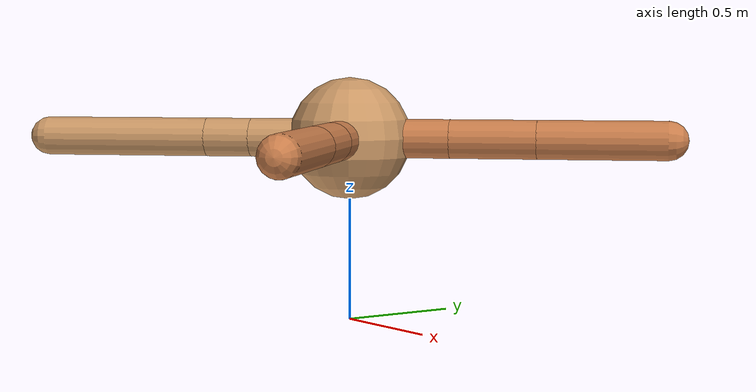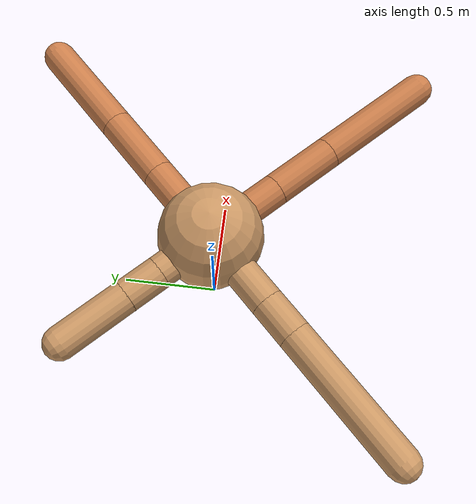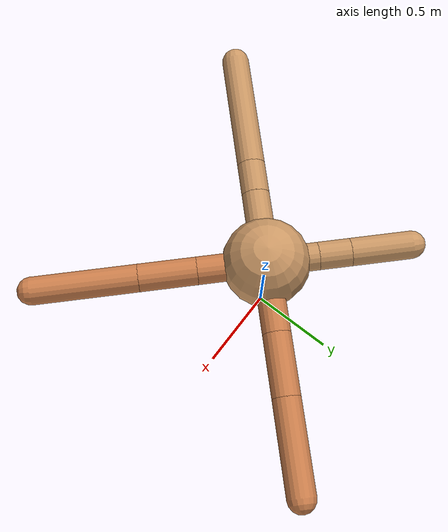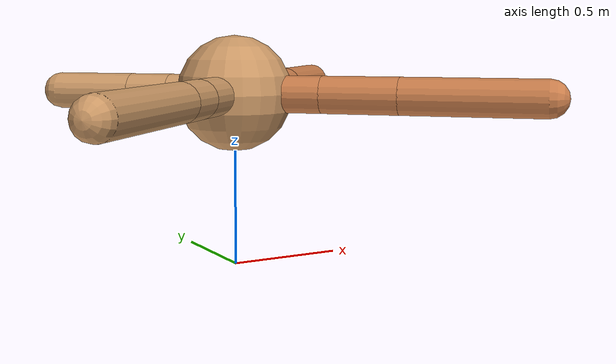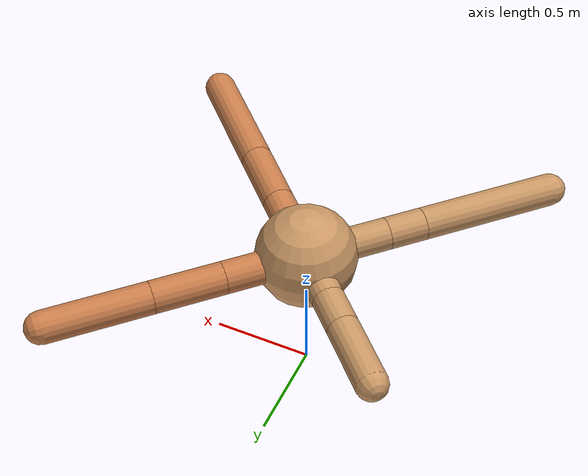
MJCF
<mujoco model="ant">
  <compiler angle="degree" coordinate="local" inertiafromgeom="true" />
  <option integrator="RK4" timestep="0.01" />
  <custom>
    <numeric data="0.0 0.0 0.55 1.0 0.0 0.0 0.0 0.0 1.0 0.0 -1.0 0.0 -1.0 0.0 1.0" name="init_qpos" />
  </custom>
  <default>
    <joint armature="1" damping="1" limited="true" />
    <geom conaffinity="0" condim="3" density="5.0" friction="1.5 0.1 0.1" margin="0.01" rgba="0.8 0.6 0.4 1" />
  </default>
  <worldbody>
    <body name="torso" pos="0 0 0.75">
      <geom name="torso_geom" pos="0 0 0" size="0.25" type="sphere" />

      <body name="front_left_leg" pos="0 0 0">
        <geom fromto="0.0 0.0 0.0 0.2928916207535764 0.2928916207535764 0.0" name="aux_1_geom" size="0.08" type="capsule" rgba=".8 .5 .3 1" />
        <body name="aux_1" pos="0.2928916207535764 0.2928916207535764 0.0">
          <joint axis="0 0 1" name="hip_1" pos="0.0 0.0 0.0" range="-40 40" type="hinge" />
          <geom fromto="0.0 0.0 0.0 0.2497289309537048 0.2497289309537048 0.0" name="left_leg_geom" size="0.08" type="capsule" rgba=".8 .5 .3 1" />
          <body pos="0.2497289309537048 0.2497289309537048 0.0" name="front_left_foot">
            <joint axis="-1 1 0" name="ankle_1" pos="0.0 0.0 0.0" range="30 100" type="hinge" />
            <geom fromto="0.0 0.0 0.0 0.3702656844082799 0.3702656844082799 0.0" name="left_ankle_geom" size="0.08" type="capsule" rgba=".8 .5 .3 1" />
          </body>
        </body>
      </body>
      <body name="front_right_leg" pos="0 0 0">
        <geom fromto="0.0 0.0 0.0 -0.20970757043391305 0.20970757043391305 0.0" name="aux_2_geom" size="0.08" type="capsule" />
        <body name="aux_2" pos="-0.20970757043391305 0.20970757043391305 0.0">
          <joint axis="0 0 1" name="hip_2" pos="0.0 0.0 0.0" range="-40 40" type="hinge" />
          <geom fromto="0.0 0.0 0.0 -0.1297226758231679 0.1297226758231679 0.0" name="right_leg_geom" size="0.08" type="capsule" />
          <body pos="-0.1297226758231679 0.1297226758231679 0.0" name="front_right_foot">
            <joint axis="1 1 0" name="ankle_2" pos="0.0 0.0 0.0" range="-100 -30" type="hinge" />
            <geom fromto="0.0 0.0 0.0 -0.24615121867368225 0.24615121867368225 0.0" name="right_ankle_geom" size="0.08" type="capsule" />
          </body>
        </body>
      </body>
      <body name="left_back_leg" pos="0 0 0">
        <geom fromto="0.0 0.0 0.0 -0.2933651315647117 -0.2933651315647117 0.0" name="aux_3_geom" size="0.08" type="capsule" />
        <body name="aux_3" pos="-0.2933651315647117 -0.2933651315647117 0.0">
          <joint axis="0 0 1" name="hip_3" pos="0.0 0.0 0.0" range="-40 40" type="hinge" />
          <geom fromto="0.0 0.0 0.0 -0.13328145353371473 -0.13328145353371473 0.0" name="back_leg_geom" size="0.08" type="capsule" />
          <body pos="-0.13328145353371473 -0.13328145353371473 0.0" name="left_back_foot">
            <joint axis="-1 1 0" name="ankle_3" pos="0.0 0.0 0.0" range="-100 -30" type="hinge" />
            <geom fromto="0.0 0.0 0.0 -0.4867460335245845 -0.4867460335245845 0.0" name="third_ankle_geom" size="0.08" type="capsule" />
          </body>
        </body>
      </body>
      <body name="right_back_leg" pos="0 0 0">
        <geom fromto="0.0 0.0 0.0 0.27452333696486914 -0.27452333696486914 0.0" name="aux_4_geom" size="0.08" type="capsule" rgba=".8 .5 .3 1" />
        <body name="aux_4" pos="0.27452333696486914 -0.27452333696486914 0.0">
          <joint axis="0 0 1" name="hip_4" pos="0.0 0.0 0.0" range="-40 40" type="hinge" />
          <geom fromto="0.0 0.0 0.0 0.23242837765564733 -0.23242837765564733 0.0" name="rightback_leg_geom" size="0.08" type="capsule" rgba=".8 .5 .3 1" />
          <body pos="0.23242837765564733 -0.23242837765564733 0.0" name="right_back_foot">
            <joint axis="1 1 0" name="ankle_4" pos="0.0 0.0 0.0" range="30 100" type="hinge" />
            <geom fromto="0.0 0.0 0.0 0.4230156618648273 -0.4230156618648273 0.0" name="fourth_ankle_geom" size="0.08" type="capsule" rgba=".8 .5 .3 1" />
          </body>
        </body>
      </body>
    </body>
  </worldbody>
  <actuator>
    <motor ctrllimited="true" ctrlrange="-1.0 1.0" joint="hip_4" gear="150" />
    <motor ctrllimited="true" ctrlrange="-1.0 1.0" joint="ankle_4" gear="150" />
    <motor ctrllimited="true" ctrlrange="-1.0 1.0" joint="hip_1" gear="150" />
    <motor ctrllimited="true" ctrlrange="-1.0 1.0" joint="ankle_1" gear="150" />
    <motor ctrllimited="true" ctrlrange="-1.0 1.0" joint="hip_2" gear="150" />
    <motor ctrllimited="true" ctrlrange="-1.0 1.0" joint="ankle_2" gear="150" />
    <motor ctrllimited="true" ctrlrange="-1.0 1.0" joint="hip_3" gear="150" />
    <motor ctrllimited="true" ctrlrange="-1.0 1.0" joint="ankle_3" gear="150" />
  </actuator>
</mujoco>
